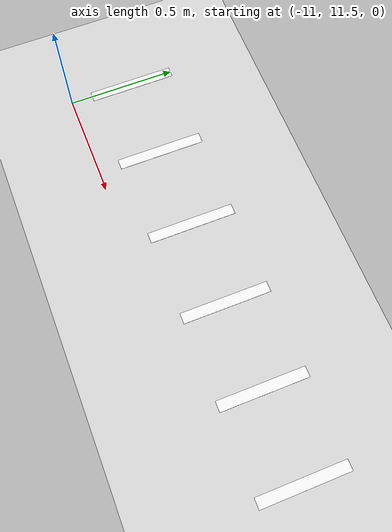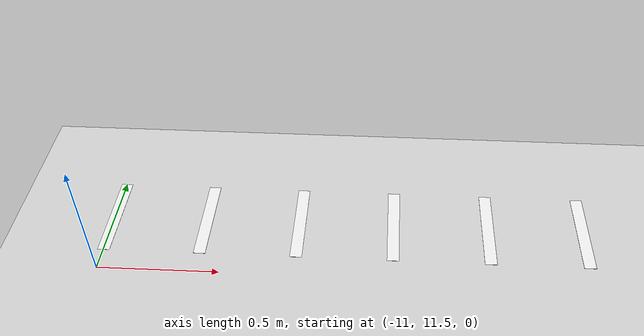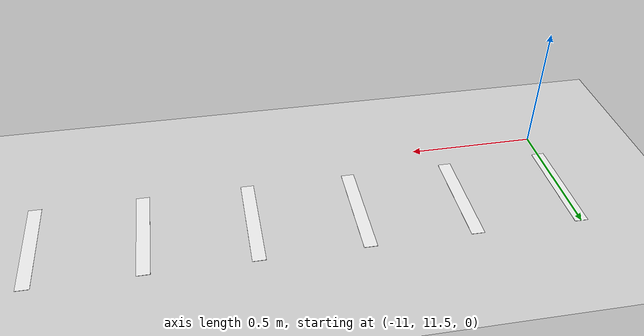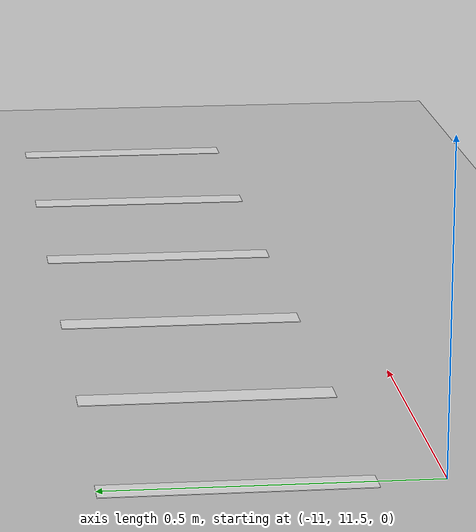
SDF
<sdf version="1.6">
 <world name="default">
  <model name="ground_plane">
   <static>1</static>
   <link name="link">
    <collision name="collision">
     <geometry><plane><normal>0 0 1</normal><size>100 100</size></plane></geometry>
     <surface><friction><ode><mu>100</mu><mu2>50</mu2></ode></friction></surface>
    </collision>
    <visual name="visual">
     <cast_shadows>0</cast_shadows>
     <geometry><plane><normal>0 0 1</normal><size>100 100</size></plane></geometry>
     <material>
      <script><uri>file://media/materials/scripts/gazebo.material</uri><name>Gazebo/Grey</name></script>
     </material>
    </visual>
   </link>
  </model>
  <model name="zebra_crossing_40cmx200cm_1">
   <link name="link_2">
    <inertial>
     <mass>1</mass>
     <inertia>
      <ixx>0.166667</ixx>
      <ixy>0</ixy>
      <ixz>0</ixz>
      <iyy>0.166667</iyy>
      <iyz>0</iyz>
      <izz>0.166667</izz>
     </inertia>
    </inertial>
    <visual name="ModelPreview_5::link_2::visual_1">
     <pose>-0.2 0 0 0 -0 0</pose>
     <geometry><box><size>0.05 0.4 0.001</size></box></geometry>
     <material>
      <lighting>1</lighting>
      <script><uri>file://media/materials/scripts/gazebo.material</uri><name>Gazebo/White</name></script>
     </material>
    </visual>
    <visual name="ModelPreview_5::link_2::visual_3">
     <pose>-0.6 0 0 0 -0 0</pose>
     <geometry><box><size>0.05 0.4 0.001</size></box></geometry>
     <material>
      <lighting>1</lighting>
      <script><uri>file://media/materials/scripts/gazebo.material</uri><name>Gazebo/White</name></script>
     </material>
    </visual>
    <visual name="ModelPreview_5::link_2::visual_4">
     <pose>1 0 0 0 -0 0</pose>
     <geometry><box><size>0.05 0.4 0.001</size></box></geometry>
     <material>
      <lighting>1</lighting>
      <script><uri>file://media/materials/scripts/gazebo.material</uri><name>Gazebo/White</name></script>
     </material>
    </visual>
    <visual name="visual">
     <pose>0.2 0 0 0 -0 0</pose>
     <geometry><box><size>0.05 0.4 0.001</size></box></geometry>
     <material>
      <lighting>1</lighting>
      <script><uri>file://media/materials/scripts/gazebo.material</uri><name>Gazebo/White</name></script>
     </material>
    </visual>
    <visual name="ModelPreview_5::link_2::visual_5">
     <pose>-1 0 0 0 -0 0</pose>
     <geometry><box><size>0.05 0.4 0.001</size></box></geometry>
     <material>
      <lighting>1</lighting>
      <script><uri>file://media/materials/scripts/gazebo.material</uri><name>Gazebo/White</name></script>
     </material>
    </visual>
    <visual name="ModelPreview_5::link_2::visual_2">
     <pose>0.6 0 0 0 -0 0</pose>
     <geometry><box><size>0.05 0.4 0.001</size></box></geometry>
     <material>
      <lighting>1</lighting>
      <script><uri>file://media/materials/scripts/gazebo.material</uri><name>Gazebo/White</name></script>
     </material>
    </visual>
    <collision name="collision_5">
     <pose>-1 0 0 0 -0 0</pose>
     <geometry><box><size>0.05 0.4 1e-05</size></box></geometry>
     <surface>
      <friction>
       <ode><mu>1</mu><mu2>1</mu2><fdir1>0 0 0</fdir1><slip1>0</slip1><slip2>0</slip2></ode>
       <torsional>
        <coefficient>1</coefficient>
        <patch_radius>0</patch_radius>
        <surface_radius>0</surface_radius>
        <use_patch_radius>1</use_patch_radius>
        <ode><slip>0</slip></ode>
       </torsional>
      </friction>
      <bounce><restitution_coefficient>0</restitution_coefficient><threshold>1e+06</threshold></bounce>
      <contact>
       <collide_without_contact>0</collide_without_contact>
       <collide_without_contact_bitmask>1</collide_without_contact_bitmask>
       <collide_bitmask>1</collide_bitmask>
       <ode>
        <soft_cfm>0</soft_cfm>
        <soft_erp>0.2</soft_erp>
        <kp>1e+13</kp>
        <kd>1</kd>
        <max_vel>0.01</max_vel>
        <min_depth>0</min_depth>
       </ode>
       <bullet>
        <split_impulse>1</split_impulse>
        <split_impulse_penetration_threshold>-0.01</split_impulse_penetration_threshold>
        <soft_cfm>0</soft_cfm>
        <soft_erp>0.2</soft_erp>
        <kp>1e+13</kp>
        <kd>1</kd>
       </bullet>
      </contact>
     </surface>
    </collision>
    <collision name="collision">
     <pose>0.2 0 0 0 -0 0</pose>
     <geometry><box><size>0.05 0.4 1e-05</size></box></geometry>
     <surface>
      <friction>
       <ode><mu>1</mu><mu2>1</mu2><fdir1>0 0 0</fdir1><slip1>0</slip1><slip2>0</slip2></ode>
       <torsional>
        <coefficient>1</coefficient>
        <patch_radius>0</patch_radius>
        <surface_radius>0</surface_radius>
        <use_patch_radius>1</use_patch_radius>
        <ode><slip>0</slip></ode>
       </torsional>
      </friction>
      <bounce><restitution_coefficient>0</restitution_coefficient><threshold>1e+06</threshold></bounce>
      <contact>
       <collide_without_contact>0</collide_without_contact>
       <collide_without_contact_bitmask>1</collide_without_contact_bitmask>
       <collide_bitmask>1</collide_bitmask>
       <ode>
        <soft_cfm>0</soft_cfm>
        <soft_erp>0.2</soft_erp>
        <kp>1e+13</kp>
        <kd>1</kd>
        <max_vel>0.01</max_vel>
        <min_depth>0</min_depth>
       </ode>
       <bullet>
        <split_impulse>1</split_impulse>
        <split_impulse_penetration_threshold>-0.01</split_impulse_penetration_threshold>
        <soft_cfm>0</soft_cfm>
        <soft_erp>0.2</soft_erp>
        <kp>1e+13</kp>
        <kd>1</kd>
       </bullet>
      </contact>
     </surface>
    </collision>
    <collision name="collision_3">
     <pose>-0.6 0 0 0 -0 0</pose>
     <geometry><box><size>0.05 0.4 1e-05</size></box></geometry>
     <surface>
      <friction>
       <ode><mu>1</mu><mu2>1</mu2><fdir1>0 0 0</fdir1><slip1>0</slip1><slip2>0</slip2></ode>
       <torsional>
        <coefficient>1</coefficient>
        <patch_radius>0</patch_radius>
        <surface_radius>0</surface_radius>
        <use_patch_radius>1</use_patch_radius>
        <ode><slip>0</slip></ode>
       </torsional>
      </friction>
      <bounce><restitution_coefficient>0</restitution_coefficient><threshold>1e+06</threshold></bounce>
      <contact>
       <collide_without_contact>0</collide_without_contact>
       <collide_without_contact_bitmask>1</collide_without_contact_bitmask>
       <collide_bitmask>1</collide_bitmask>
       <ode>
        <soft_cfm>0</soft_cfm>
        <soft_erp>0.2</soft_erp>
        <kp>1e+13</kp>
        <kd>1</kd>
        <max_vel>0.01</max_vel>
        <min_depth>0</min_depth>
       </ode>
       <bullet>
        <split_impulse>1</split_impulse>
        <split_impulse_penetration_threshold>-0.01</split_impulse_penetration_threshold>
        <soft_cfm>0</soft_cfm>
        <soft_erp>0.2</soft_erp>
        <kp>1e+13</kp>
        <kd>1</kd>
       </bullet>
      </contact>
     </surface>
    </collision>
    <collision name="collision_4">
     <pose>1 0 0 0 -0 0</pose>
     <geometry><box><size>0.05 0.4 1e-05</size></box></geometry>
     <surface>
      <friction>
       <ode><mu>1</mu><mu2>1</mu2><fdir1>0 0 0</fdir1><slip1>0</slip1><slip2>0</slip2></ode>
       <torsional>
        <coefficient>1</coefficient>
        <patch_radius>0</patch_radius>
        <surface_radius>0</surface_radius>
        <use_patch_radius>1</use_patch_radius>
        <ode><slip>0</slip></ode>
       </torsional>
      </friction>
      <bounce><restitution_coefficient>0</restitution_coefficient><threshold>1e+06</threshold></bounce>
      <contact>
       <collide_without_contact>0</collide_without_contact>
       <collide_without_contact_bitmask>1</collide_without_contact_bitmask>
       <collide_bitmask>1</collide_bitmask>
       <ode>
        <soft_cfm>0</soft_cfm>
        <soft_erp>0.2</soft_erp>
        <kp>1e+13</kp>
        <kd>1</kd>
        <max_vel>0.01</max_vel>
        <min_depth>0</min_depth>
       </ode>
       <bullet>
        <split_impulse>1</split_impulse>
        <split_impulse_penetration_threshold>-0.01</split_impulse_penetration_threshold>
        <soft_cfm>0</soft_cfm>
        <soft_erp>0.2</soft_erp>
        <kp>1e+13</kp>
        <kd>1</kd>
       </bullet>
      </contact>
     </surface>
    </collision>
    <collision name="collision_2">
     <pose>0.6 0 0 0 -0 0</pose>
     <geometry><box><size>0.05 0.4 1e-05</size></box></geometry>
     <surface>
      <friction>
       <ode><mu>1</mu><mu2>1</mu2><fdir1>0 0 0</fdir1><slip1>0</slip1><slip2>0</slip2></ode>
       <torsional>
        <coefficient>1</coefficient>
        <patch_radius>0</patch_radius>
        <surface_radius>0</surface_radius>
        <use_patch_radius>1</use_patch_radius>
        <ode><slip>0</slip></ode>
       </torsional>
      </friction>
      <bounce><restitution_coefficient>0</restitution_coefficient><threshold>1e+06</threshold></bounce>
      <contact>
       <collide_without_contact>0</collide_without_contact>
       <collide_without_contact_bitmask>1</collide_without_contact_bitmask>
       <collide_bitmask>1</collide_bitmask>
       <ode>
        <soft_cfm>0</soft_cfm>
        <soft_erp>0.2</soft_erp>
        <kp>1e+13</kp>
        <kd>1</kd>
        <max_vel>0.01</max_vel>
        <min_depth>0</min_depth>
       </ode>
       <bullet>
        <split_impulse>1</split_impulse>
        <split_impulse_penetration_threshold>-0.01</split_impulse_penetration_threshold>
        <soft_cfm>0</soft_cfm>
        <soft_erp>0.2</soft_erp>
        <kp>1e+13</kp>
        <kd>1</kd>
       </bullet>
      </contact>
     </surface>
    </collision>
    <collision name="collision_1">
     <pose>-0.2 0 0 0 -0 0</pose>
     <geometry><box><size>0.05 0.4 1e-05</size></box></geometry>
     <surface>
      <friction>
       <ode><mu>1</mu><mu2>1</mu2><fdir1>0 0 0</fdir1><slip1>0</slip1><slip2>0</slip2></ode>
       <torsional>
        <coefficient>1</coefficient>
        <patch_radius>0</patch_radius>
        <surface_radius>0</surface_radius>
        <use_patch_radius>1</use_patch_radius>
        <ode><slip>0</slip></ode>
       </torsional>
      </friction>
      <bounce><restitution_coefficient>0</restitution_coefficient><threshold>1e+06</threshold></bounce>
      <contact>
       <collide_without_contact>0</collide_without_contact>
       <collide_without_contact_bitmask>1</collide_without_contact_bitmask>
       <collide_bitmask>1</collide_bitmask>
       <ode>
        <soft_cfm>0</soft_cfm>
        <soft_erp>0.2</soft_erp>
        <kp>1e+13</kp>
        <kd>1</kd>
        <max_vel>0.01</max_vel>
        <min_depth>0</min_depth>
       </ode>
       <bullet>
        <split_impulse>1</split_impulse>
        <split_impulse_penetration_threshold>-0.01</split_impulse_penetration_threshold>
        <soft_cfm>0</soft_cfm>
        <soft_erp>0.2</soft_erp>
        <kp>1e+13</kp>
        <kd>1</kd>
       </bullet>
      </contact>
     </surface>
    </collision>
   </link>
   <static>1</static>
   <pose>-10 11.8 0 0 -0 0</pose>
  </model>
 </world>
</sdf>
